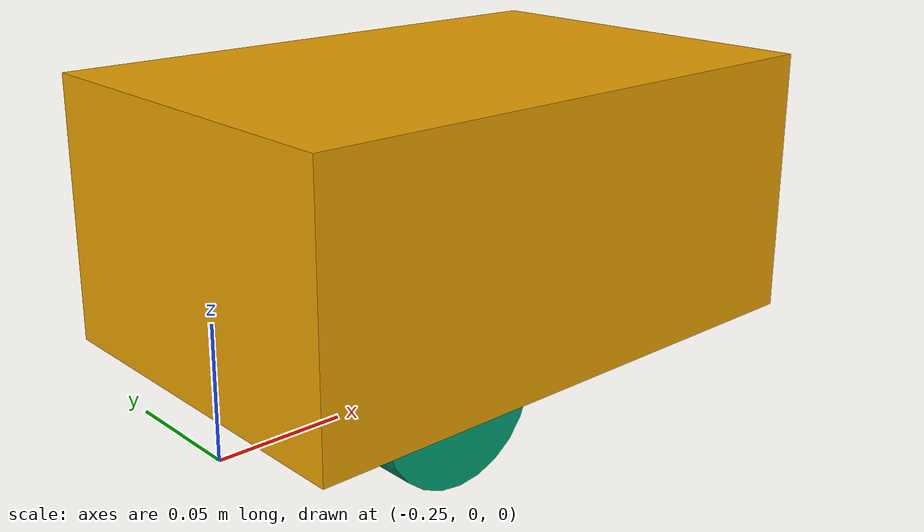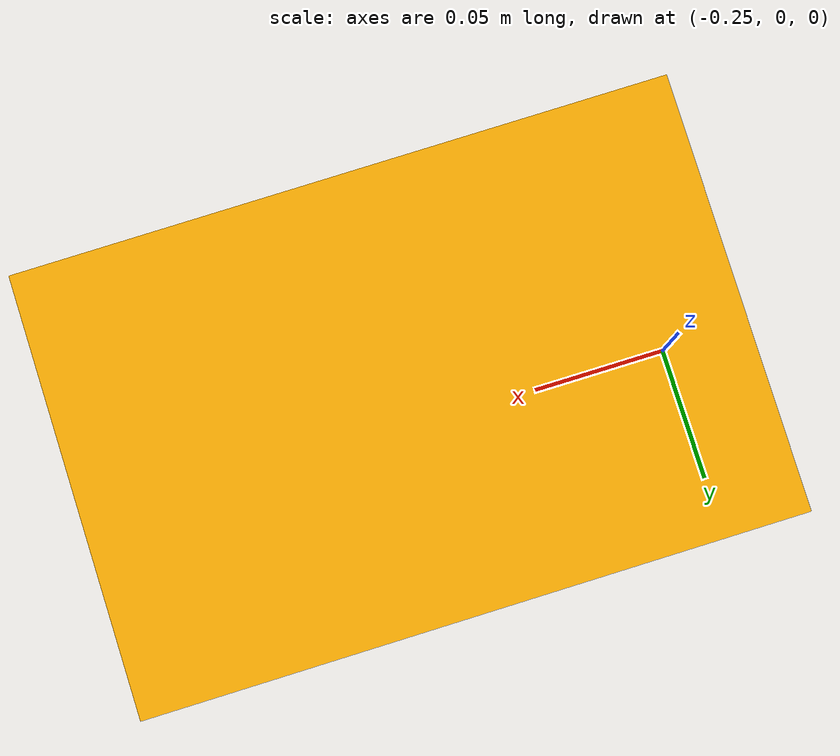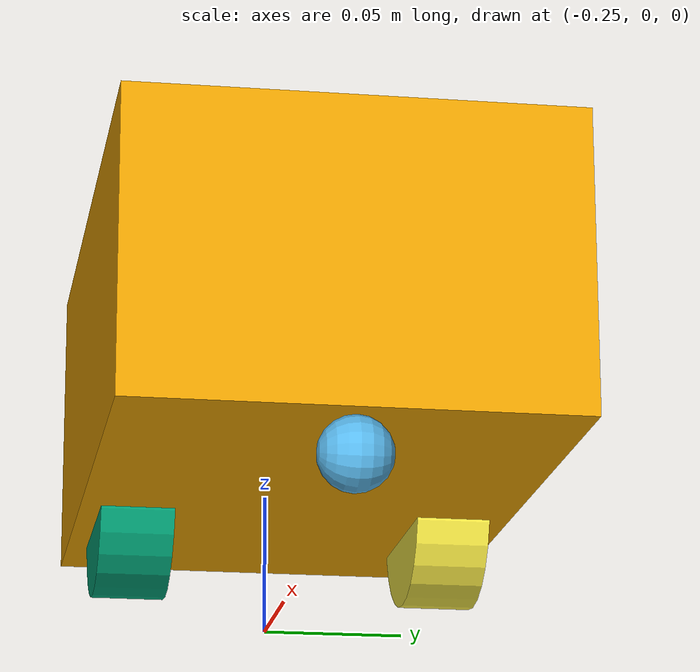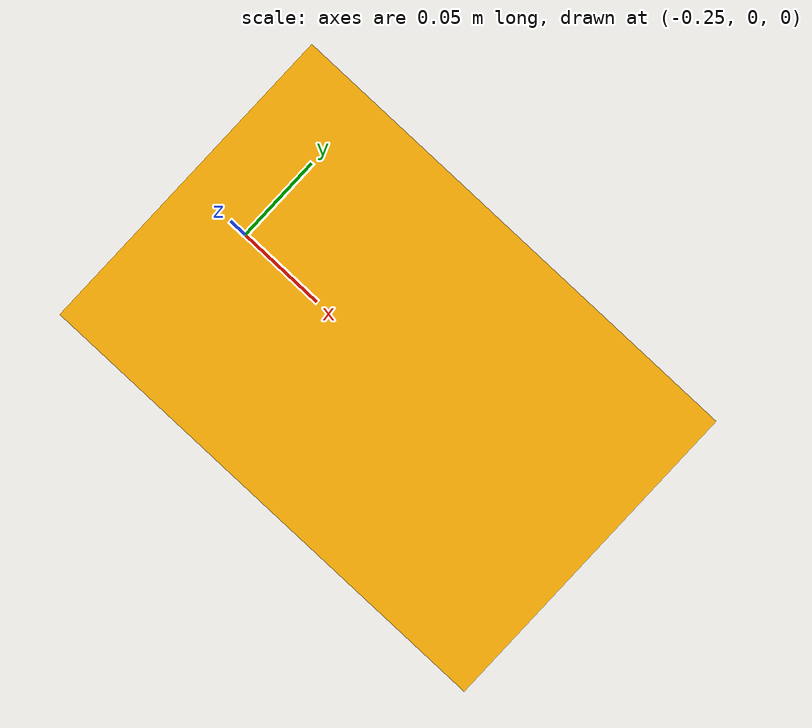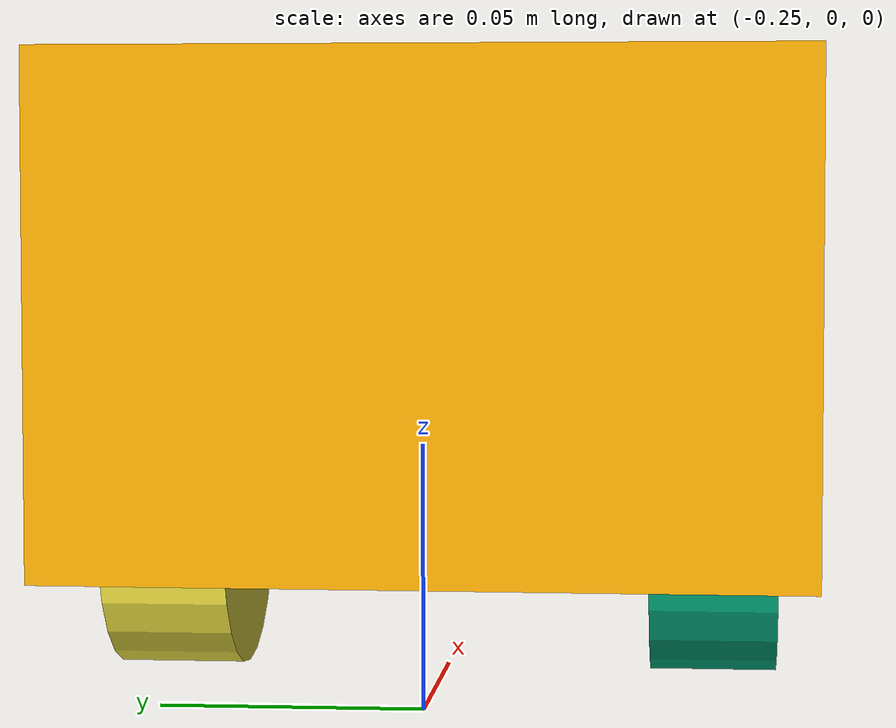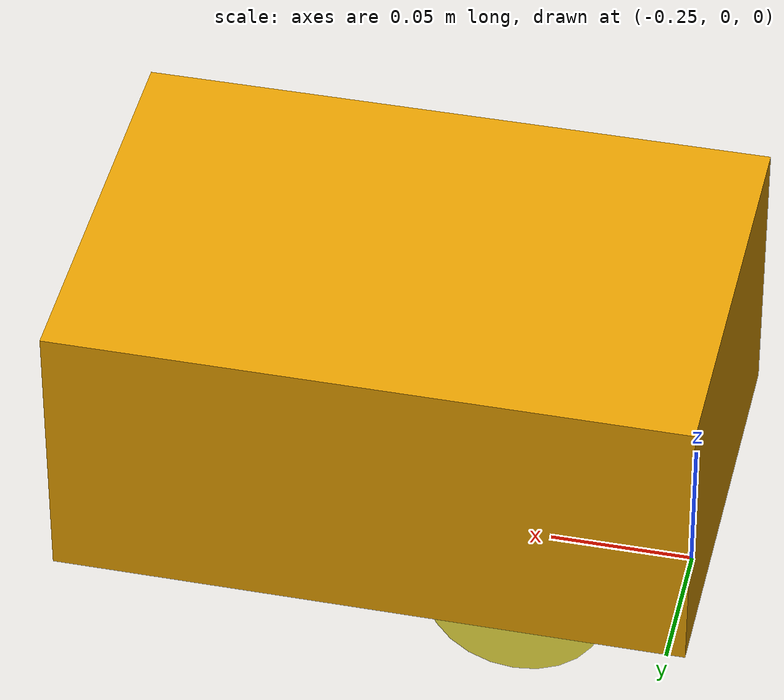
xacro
<?xml version="1.0" ?>
<robot name="herbie" xmlns:xacro="http://www.ros.org/wiki/xacro">
    <xacro:include filename="$(find gazebo_worlds)/urdf/herbie.gazebo" />
    <xacro:include filename="$(find gazebo_worlds)/urdf/macros.xacro" />

    <link name="link_chassis">
        <!-- pose and inertial -->
        <pose>0 0 0 0 0 0</pose>
        <inertial>
            <mass value="0.7"/>
            <origin rpy="0 0 0" xyz="-0.15 0 0.074"/>
            <xacro:box_inertia mass="0.7" x="0.22" y="0.147" z="0.10"/>
        </inertial>
        <!-- body -->
        <collision name="collision_chassis">
            <origin rpy="0 0 0" xyz="-0.15 0 0.074"/>
            <geometry>
                <box size="0.22 0.147 0.10"/>
            </geometry>
        </collision>
        <visual>
            <origin rpy="0 0 0" xyz="-0.15 0 0.074"/>
            <geometry>
                <box size="0.22 0.147 0.10"/>
            </geometry>
        </visual>
    </link>

    <link name="link_caster_wheel">
        <!-- caster front -->
        <inertial>
            <mass value="0.05"/>
            <origin rpy="0 0 0" xyz="0 0 0"/>
            <xacro:sphere_inertia mass="0.05" r="0.012"/>
        </inertial>
        <collision name="caster_wheel_collision">
            <origin rpy="0 0 0" xyz="0 0 0"/>
            <geometry>
                <sphere radius="0.012"/>
            </geometry>
            <surface>
                <friction>
                <ode>
                    <mu>0</mu>
                    <mu2>0</mu2>
                    <slip1>1.0</slip1>
                    <slip2>1.0</slip2>
                </ode>
                </friction>
            </surface>
        </collision>
        <visual name="caster_wheel_visual">
            <origin rpy="0 0 0" xyz="0 0 0"/>
            <geometry>
                <sphere radius="0.012"/>
            </geometry>
        </visual>
    </link>

    <link name="link_right_wheel">
        <inertial>
            <mass value="0.125"/>
            <origin rpy="0 0 0" xyz="0 0 0"/>
            <xacro:cylinder_inertia mass="0.1" r="0.0313" l="0.025" />
        </inertial>
        <collision name="link_right_wheel_collision">
            <origin rpy="0 0 0" xyz="0 0 0"/>
            <geometry>
            <cylinder length="0.025" radius="0.0313"/>
            </geometry>
        </collision>
        <visual name="link_right_wheel_visual">
            <origin rpy="0 0 0" xyz="0 0 0"/>
            <geometry>
            <cylinder length="0.025" radius="0.0313"/>
            </geometry>
        </visual>
    </link>

    <link name="link_left_wheel">
        <inertial>
            <mass value="0.125"/>
            <origin rpy="0 0 0" xyz="0 0 0"/>
            <xacro:cylinder_inertia mass="0.1" r="0.0313" l="0.025" />
        </inertial>
        <collision name="link_left_wheel_collision">
            <origin rpy="0 0 0" xyz="0 0 0"/>
            <geometry>
            <cylinder length="0.025" radius="0.0313"/>
            </geometry>
        </collision>
        <visual name="link_left_wheel_visual">
            <origin rpy="0 0 0" xyz="0 0 0"/>
            <geometry>
            <cylinder length="0.025" radius="0.0313"/>
            </geometry>
        </visual>
    </link>

    <joint name="joint_right_wheel" type="continuous">
        <origin rpy="-1.5708 0 0" xyz="-0.2 -0.054 0.03125"/>
        <child link="link_right_wheel"/>
        <parent link="link_chassis"/>
        <axis rpy="0 0 0" xyz="0 0 1"/>
        <limit effort="100" velocity="1"/>
        <joint_properties damping="1.0" friction="1.0"/>
    </joint>

    <joint name="joint_left_wheel" type="continuous">
        <origin rpy="-1.5708 0 0" xyz="-0.2 0.054 0.03125"/>
        <child link="link_left_wheel"/>
        <parent link="link_chassis"/>
        <axis rpy="0 0 0" xyz="0 0 1"/>
        <limit effort="100" velocity="1"/>
        <joint_properties damping="1.0" friction="1.0"/>
    </joint>

    <joint name="joint_caster_wheel" type="continuous">
        <origin rpy="-1.5708 0 0" xyz="-0.05 0 0.012"/>
        <child link="link_caster_wheel"/>
        <parent link="link_chassis"/>
        <axis rpy="0 0 0" xyz="0 0 1"/>
    </joint>

</robot>

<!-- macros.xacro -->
<robot xmlns:xacro="http://www.ros.org/wiki/xacro">

    <xacro:macro name="cylinder_inertia" params="mass r l">
      <inertia  ixx="${mass*(3*r*r+l*l)/12}" ixy = "0" ixz = "0"
                iyy="${mass*(3*r*r+l*l)/12}" iyz = "0"
                izz="${mass*(r*r)/2}" />
    </xacro:macro>

    <xacro:macro name="sphere_inertia" params="mass r">
      <inertia  ixx="${mass*(2*r*r)/5}" ixy = "0" ixz = "0"
                iyy="${mass*(2*r*r)/5}" iyz = "0"
                izz="${mass*(2*r*r)/5}" />
    </xacro:macro>

    <xacro:macro name="box_inertia" params="mass x y z">
      <inertia  ixx="${mass*(y*y + z*z)/12}" ixy = "0" ixz = "0"
                iyy="${mass*(x*x + z*z)/12}" iyz = "0"
                izz="${mass*(x*x + y*y)/2}" />
    </xacro:macro>

</robot>
